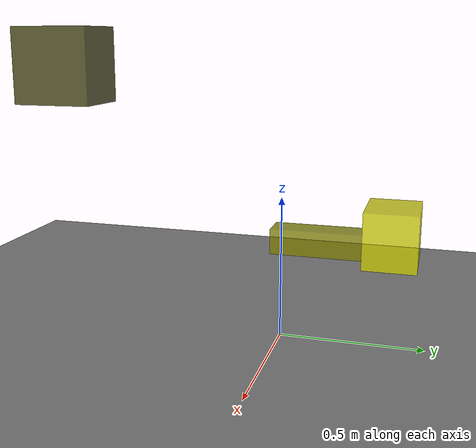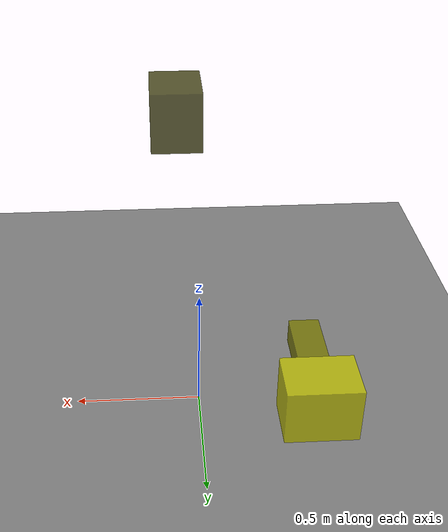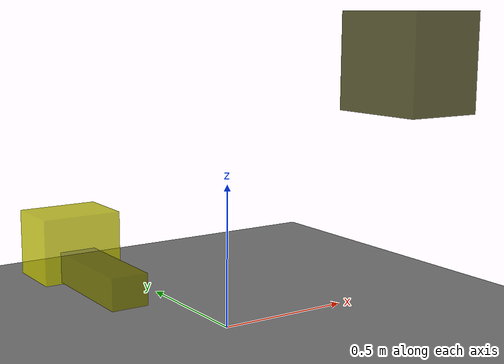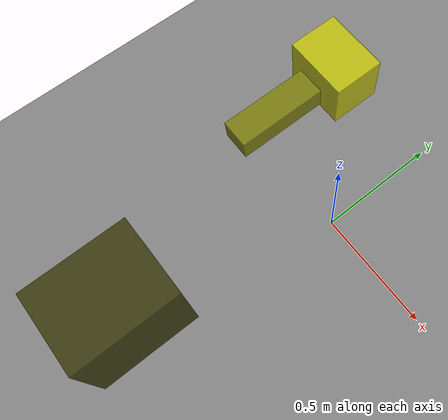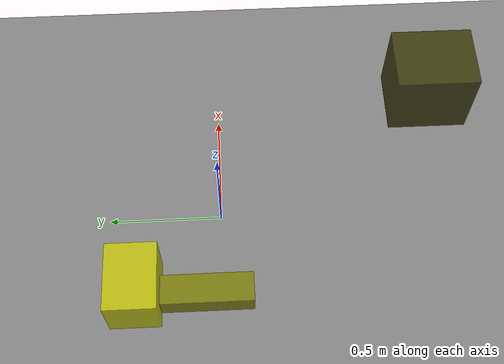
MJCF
<?xml version="1.0"?>
<mujoco model="obstacle_scene">
  <compiler angle="radian" coordinate="local"/>
  <option timestep="0.001" gravity="0 0 -9.81"/>

  <asset>
    <material name="obstacle_mat" rgba="0.8 0.8 0.0 0.8"/>
    <material name="ground_mat" rgba="0.5 0.5 0.5 1"/>
  </asset>

  <worldbody>
    <!-- Ground plane -->
    <geom name="ground" type="plane" size="3 3 0.1" material="ground_mat"/>

    <!-- Obstacles -->
    <body name="obstacle_0" pos="0.057289 -0.772987 0.942271">
      <geom name="obs_0" type="box" size="0.110923 0.138167 0.132476" rgba="0.2 0.2 0.0 0.8"/>
    </body>
    <body name="obstacle_1" pos="-0.439917 0.072286 0.230303">
      <geom name="obs_1" type="box" size="0.061306 0.203003 0.051314" rgba="0.5 0.5 0.0 0.8"/>
    </body>
    <body name="obstacle_2" pos="-0.419021 0.351273 0.283932">
      <geom name="obs_2" type="box" size="0.138032 0.104028 0.111791" rgba="0.8 0.8 0.0 0.8"/>
    </body>
  </worldbody>
</mujoco>
